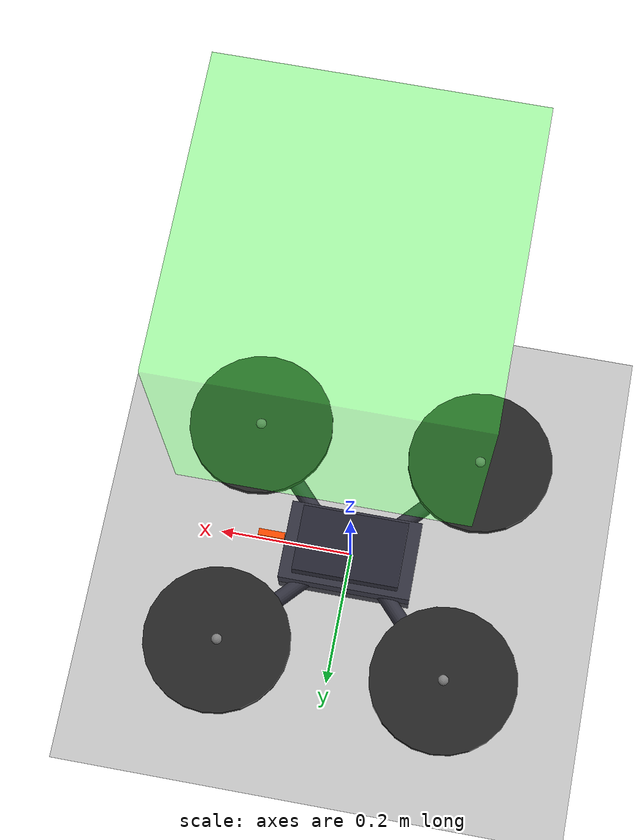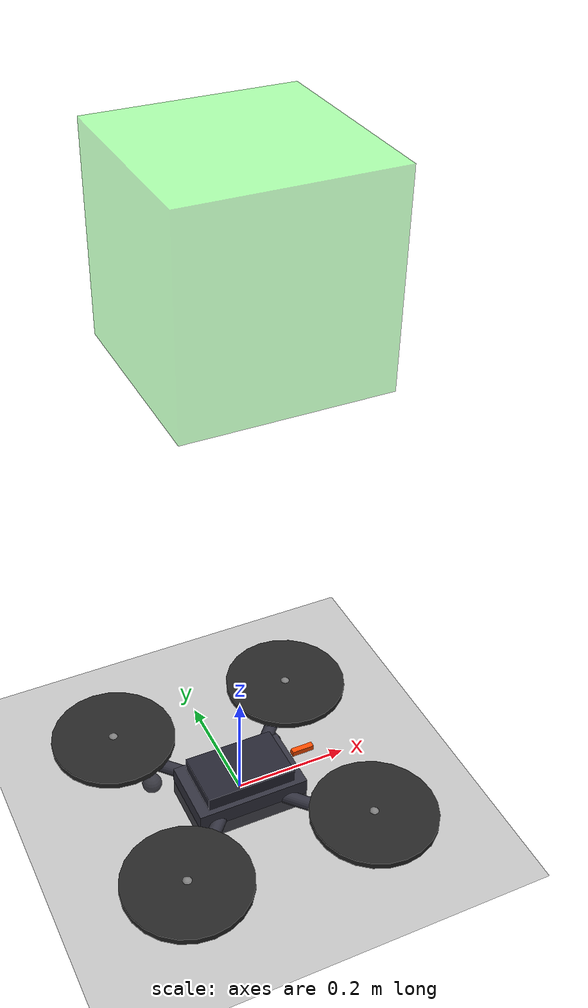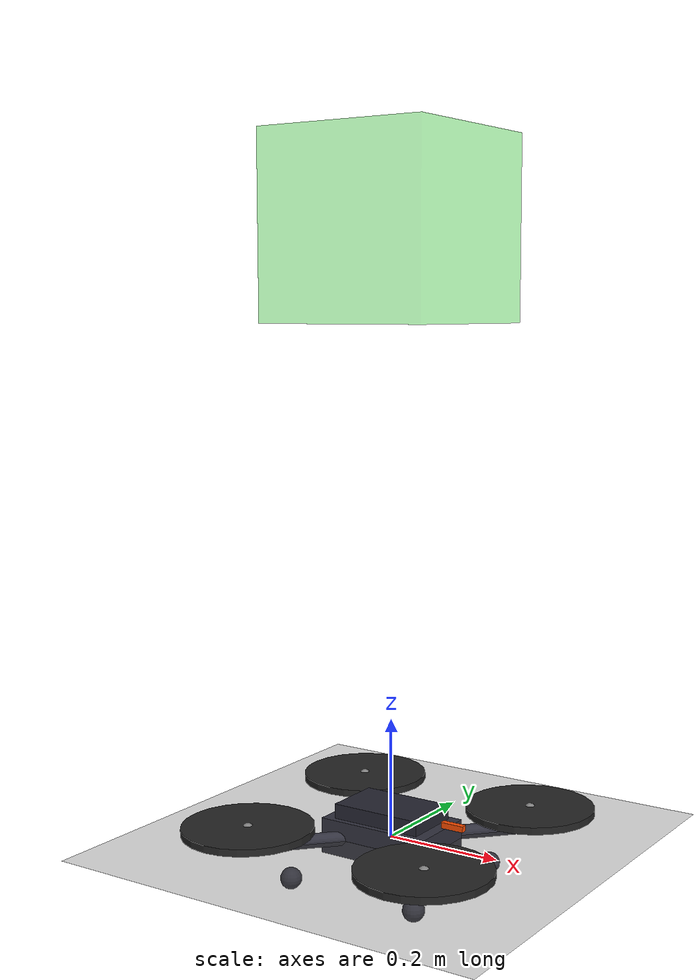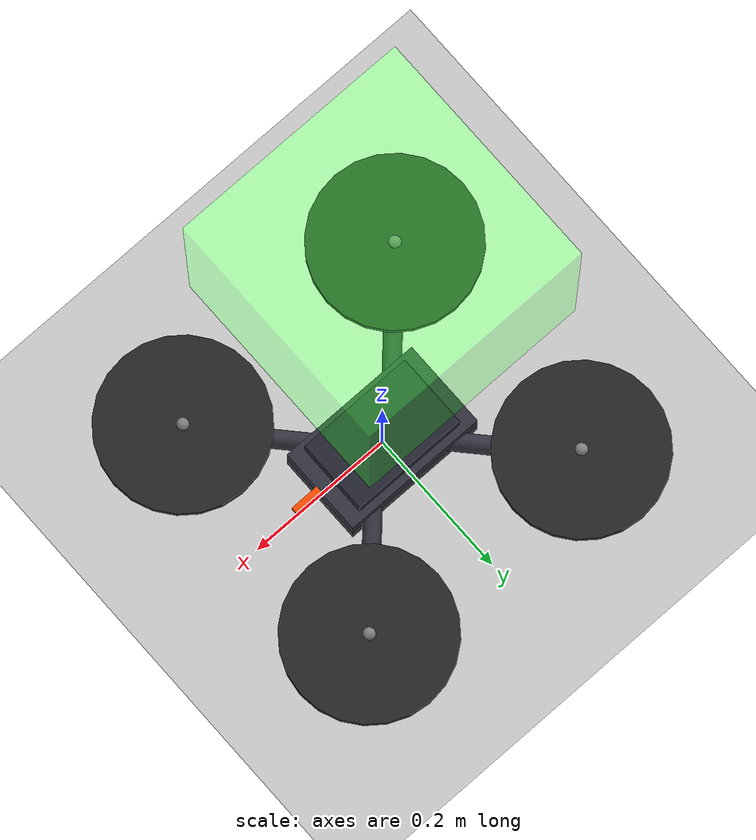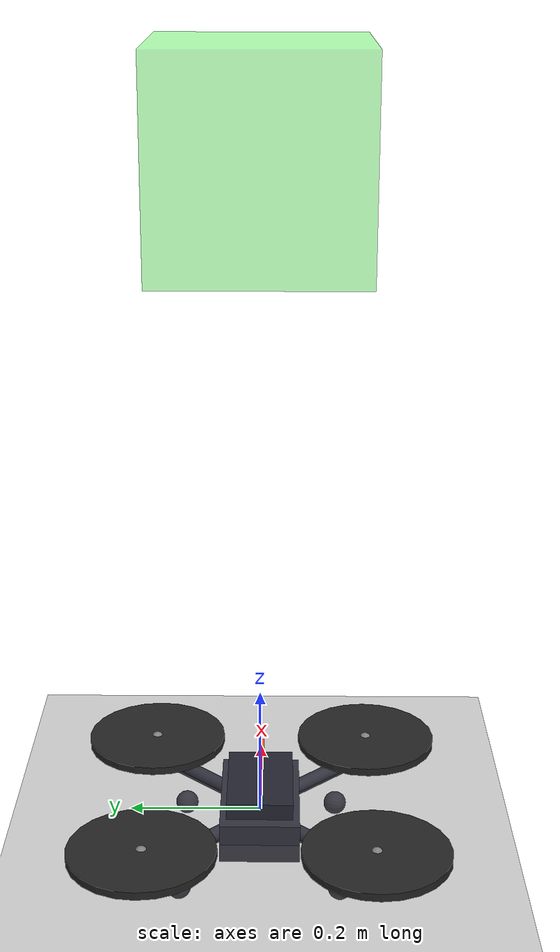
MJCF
<mujoco model="DeliveryDrone_RL">

  <compiler autolimits="true"/>

  <option timestep="0.005" density="1.225" viscosity="1.8e-5" gravity="0 0 -9.81">
    <flag warmstart="enable"/>
  </option>

  <!-- Visual defaults -->
  <default>
    <default class="drone">
      <geom rgba="0.2 0.2 0.25 1"/>
      <joint damping="0.001"/>
    </default>
    <default class="rotor">
      <geom rgba="0.15 0.15 0.15 0.9"/>
    </default>
    <default class="visual">
      <geom contype="0" conaffinity="0" mass="0"/>
    </default>
  </default>

  <asset>
    <!-- Simple procedural textures - no external files -->
    <texture name="grid" type="2d" builtin="checker" rgb1="0.35 0.35 0.35" rgb2="0.25 0.25 0.25" width="512" height="512"/>
    <texture name="sky" type="skybox" builtin="gradient" rgb1="0.6 0.7 0.9" rgb2="0.2 0.3 0.5" width="512" height="512"/>
    <material name="ground_mat" texture="grid" texrepeat="20 20" reflectance="0.1"/>
    <material name="drone_body" rgba="0.15 0.15 0.2 1" specular="0.5" shininess="0.3"/>
    <material name="drone_arm" rgba="0.1 0.1 0.1 1"/>
    <material name="rotor_mat" rgba="0.2 0.2 0.2 0.8"/>
  </asset>

  <worldbody>
    <!-- Ground plane -->
    <geom name="ground" type="plane" size="100 100 0.1" material="ground_mat"/>

    <!-- Lighting -->
    <light name="sun" pos="0 -2 5" dir="0 0.3 -1" diffuse="0.9 0.9 0.9" specular="0.3 0.3 0.3"/>
    <light name="fill" pos="0 2 3" dir="0 -0.3 -1" diffuse="0.4 0.4 0.5" specular="0.1 0.1 0.1"/>

    <!-- ==================== DRONE BODY ==================== -->
    <body name="drone" pos="0 0 0" childclass="drone">
      <freejoint name="root"/>

      <!-- Tracking camera -->
      <camera name="track" pos="-1.5 0 0.5" xyaxes="0 -1 0 0.3 0 1" mode="trackcom"/>
      <camera name="fpv" pos="0.1 0 0" xyaxes="0 -1 0 0 0 1" fovy="90"/>

      <!-- === Central body === -->
      <!-- Main chassis - where the battery/electronics would be -->
      <geom name="chassis" type="box" size="0.1 0.06 0.03" pos="0 0 0"
            material="drone_body" mass="1.0"/>

      <!-- Top cover (visual) -->
      <geom name="cover" type="box" size="0.08 0.05 0.015" pos="0 0 0.04"
            material="drone_body" mass="0.1" class="visual"/>

      <!-- === Arms (X configuration) === -->
      <!-- Front-Right arm -->
      <geom name="arm_fr" type="capsule" fromto="0.05 -0.04 0 0.17 -0.17 0"
            size="0.012" material="drone_arm" mass="0.04"/>
      <!-- Front-Left arm -->
      <geom name="arm_fl" type="capsule" fromto="0.05 0.04 0 0.17 0.17 0"
            size="0.012" material="drone_arm" mass="0.04"/>
      <!-- Rear-Right arm -->
      <geom name="arm_rr" type="capsule" fromto="-0.05 -0.04 0 -0.17 -0.17 0"
            size="0.012" material="drone_arm" mass="0.04"/>
      <!-- Rear-Left arm -->
      <geom name="arm_rl" type="capsule" fromto="-0.05 0.04 0 -0.17 0.17 0"
            size="0.012" material="drone_arm" mass="0.04"/>

      <!-- === Motor housings === -->
      <geom name="motor_fr" type="cylinder" size="0.02 0.015" pos="0.17 -0.17 0.01"
            rgba="0.3 0.1 0.1 1" mass="0.06"/>
      <geom name="motor_fl" type="cylinder" size="0.02 0.015" pos="0.17 0.17 0.01"
            rgba="0.1 0.3 0.1 1" mass="0.06"/>
      <geom name="motor_rl" type="cylinder" size="0.02 0.015" pos="-0.17 0.17 0.01"
            rgba="0.1 0.1 0.3 1" mass="0.06"/>
      <geom name="motor_rr" type="cylinder" size="0.02 0.015" pos="-0.17 -0.17 0.01"
            rgba="0.3 0.3 0.1 1" mass="0.06"/>

      <!-- === Rotor discs (for visual + collision) === -->
      <geom name="rotor_fr" type="cylinder" size="0.11 0.006" pos="0.17 -0.17 0.03"
            class="rotor" material="rotor_mat" mass="0.03"/>
      <geom name="rotor_fl" type="cylinder" size="0.11 0.006" pos="0.17 0.17 0.03"
            class="rotor" material="rotor_mat" mass="0.03"/>
      <geom name="rotor_rl" type="cylinder" size="0.11 0.006" pos="-0.17 0.17 0.03"
            class="rotor" material="rotor_mat" mass="0.03"/>
      <geom name="rotor_rr" type="cylinder" size="0.11 0.006" pos="-0.17 -0.17 0.03"
            class="rotor" material="rotor_mat" mass="0.03"/>

      <!-- === Thrust application sites === -->
      <site name="thrust_fr" pos="0.17 -0.17 0.03" size="0.01"/>
      <site name="thrust_fl" pos="0.17 0.17 0.03" size="0.01"/>
      <site name="thrust_rl" pos="-0.17 0.17 0.03" size="0.01"/>
      <site name="thrust_rr" pos="-0.17 -0.17 0.03" size="0.01"/>

      <!-- === IMU site (center of mass) === -->
      <site name="imu" pos="0 0 0" size="0.015" rgba="1 0 0 0.5"/>

      <!-- === Landing gear === -->
      <geom name="leg_fr" type="sphere" size="0.018" pos="0.12 -0.12 -0.06" mass="0.01"/>
      <geom name="leg_fl" type="sphere" size="0.018" pos="0.12 0.12 -0.06" mass="0.01"/>
      <geom name="leg_rl" type="sphere" size="0.018" pos="-0.12 0.12 -0.06" mass="0.01"/>
      <geom name="leg_rr" type="sphere" size="0.018" pos="-0.12 -0.12 -0.06" mass="0.01"/>

      <!-- Front direction indicator (visual only) -->
      <geom name="front_indicator" type="box" size="0.02 0.005 0.005" pos="0.12 0 0.04"
            rgba="1 0.3 0 1" class="visual"/>
    </body>

    <!-- ==================== OBSTACLES (for path planning tests) ==================== -->
    <!-- Uncomment these for testing obstacle avoidance -->

    <!-- position marker -->
    <body name="target_marker" mocap="true" pos="0 0 1">
      <!-- Transparent green box -->
      <geom name="target_box" type="box" size="0.15 0.15 0.15"
            rgba="0.2 1 0.2 0.4" contype="0" conaffinity="0"/>
    </body>

    <!-- ==================== LANDING ZONE MARKER ==================== -->

  </worldbody>

  <!-- ==================== ACTUATORS ==================== -->
  <actuator>
    <motor name="motor_fr" site="thrust_fr" gear="0 0 1 0 0  0.02" ctrlrange="0 12"/>
    <motor name="motor_fl" site="thrust_fl" gear="0 0 1 0 0 -0.02" ctrlrange="0 12"/>
    <motor name="motor_rl" site="thrust_rl" gear="0 0 1 0 0  0.02" ctrlrange="0 12"/>
    <motor name="motor_rr" site="thrust_rr" gear="0 0 1 0 0 -0.02" ctrlrange="0 12"/>
  </actuator>

  <!-- ==================== SENSORS ==================== -->
  <sensor>
    <!-- Body-frame angular velocity (for stability) -->
    <gyro name="gyro" site="imu"/>

    <!-- Body-frame linear acceleration (for disturbance detection) -->
    <accelerometer name="accel" site="imu"/>

    <!-- Orientation as quaternion [w, x, y, z] -->
    <framequat name="orientation" objtype="site" objname="imu"/>

    <!-- World-frame position -->
    <framepos name="position" objtype="site" objname="imu"/>

    <!-- World-frame linear velocity -->
    <framelinvel name="linear_velocity" objtype="site" objname="imu"/>

    <!-- World-frame angular velocity -->
    <frameangvel name="angular_velocity" objtype="site" objname="imu"/>
  </sensor>

  <!-- ==================== KEYFRAMES ==================== -->
  <keyframe>
    <!-- Hover state: drone at 1m altitude, level, all motors at hover thrust -->
    <!-- qpos: [x, y, z, qw, qx, qy, qz] for freejoint -->
    <!-- Hover thrust per motor ≈ (mass * g) / 4 = (1.5 * 9.81) / 4 ≈ 4.08 -->
    <key name="hover" qpos="0 0 1 1 0 0 0" ctrl="4.08 4.08 4.08 4.08"/>

    <!-- Ground start -->
    <key name="ground" qpos="0 0 0.1 1 0 0 0" ctrl="0 0 0 0"/>

    <!-- Tilted (for recovery training) -->
    <key name="tilted" qpos="0 0 1 0.966 0.259 0 0" ctrl="4.08 4.08 4.08 4.08"/>
  </keyframe>

</mujoco>
